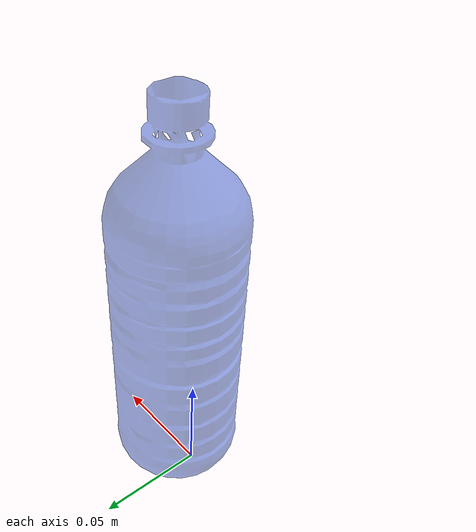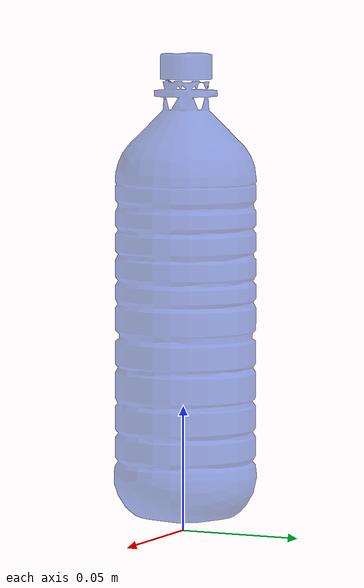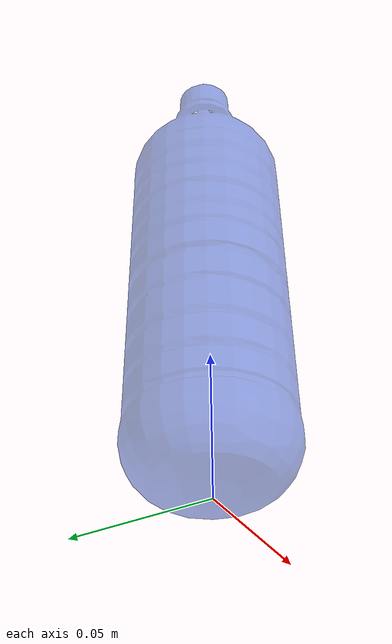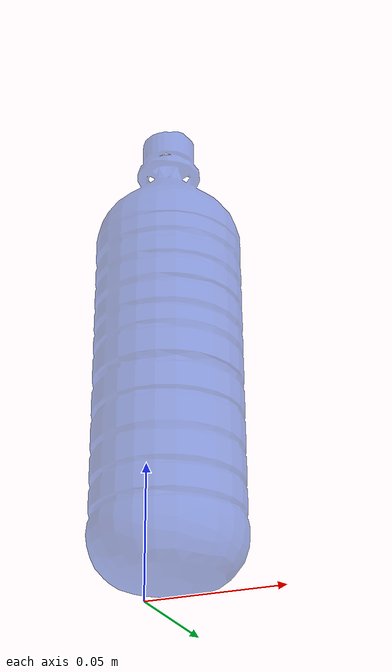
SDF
<?xml version='1.0'?>
<sdf version="1.4">
  <model name="bottle">
    <pose>0 0 0 0 0 0</pose>
    <static>false</static>
    <link name="link">
      <inertial>
        <pose>0.00435 0.0046 0.05 0 0 0</pose>
        <mass>0.54</mass>
        <inertia> <!-- inertias are computed considering the bottle as a  cylinder -->
          <ixx>0.002286</ixx>
          <ixy>0.0</ixy>
          <ixz>0.0</ixz>
          <iyy>0.002286</iyy>
          <iyz>0.0</iyz>
          <izz>0.000972</izz>
        </inertia>
      </inertial>
      <collision name="collision">
        <pose>-0.34 0 0 0 0 0</pose>
        <geometry>
          <mesh>
            <uri>/root/tiago_public_ws/src/tiago_pouring/models/bottle1_empty/meshes/model.dae</uri>
            <scale>0.018 0.018 0.018</scale>
          </mesh>
        </geometry>
        <surface>
          <contact>
            <!-- typical acrylic plastic material properties -->
            <poissons_ratio>0.35</poissons_ratio>
            <elastic_modulus>3.102640776e+09</elastic_modulus>
            <ode>
              <kp>100000</kp>
              <kd>100</kd>
              <max_vel>100.0</max_vel>
              <min_depth>0.001</min_depth>
            </ode>
          </contact>
          <friction>
            <torsional>
              <coefficient>1.0</coefficient>
              <use_patch_radius>0</use_patch_radius>
              <surface_radius>0.01</surface_radius>
            </torsional>
          </friction>
        </surface>
      </collision>

      <visual name="visual">
        <pose>-0.34 0 0 0 0 0</pose>
        <geometry>
          <mesh>
            <uri>/root/tiago_public_ws/src/tiago_pouring/models/bottle1_empty/meshes/model_downsampled.dae</uri>
            <scale>0.018 0.018 0.018</scale>
          </mesh>
        </geometry>
        <material>
          <script>
            <uri>file://media/materials/scripts/gazebo.material</uri>
            <name>Gazebo/BlueTransparent</name>
          </script>
        </material>
      </visual>

    </link>
  </model>
</sdf>
